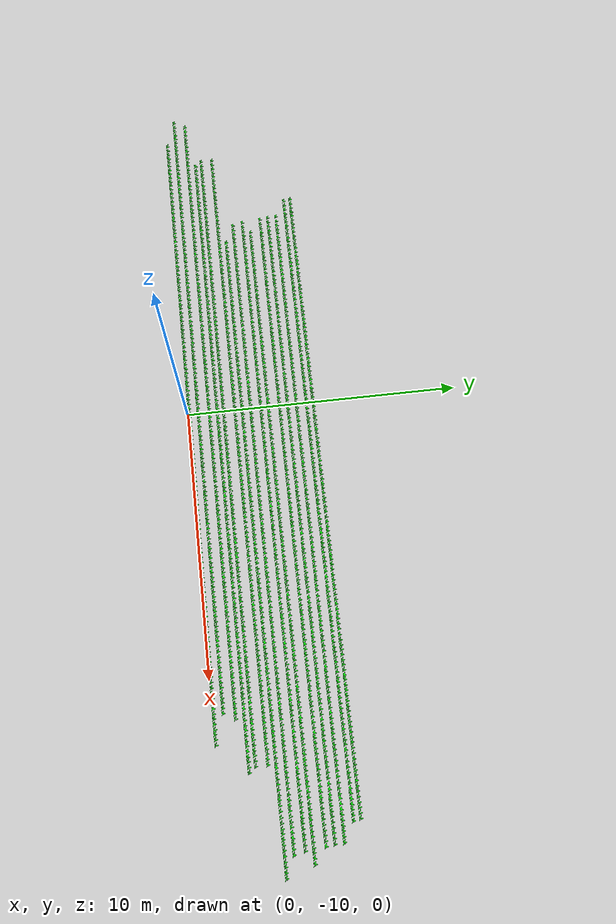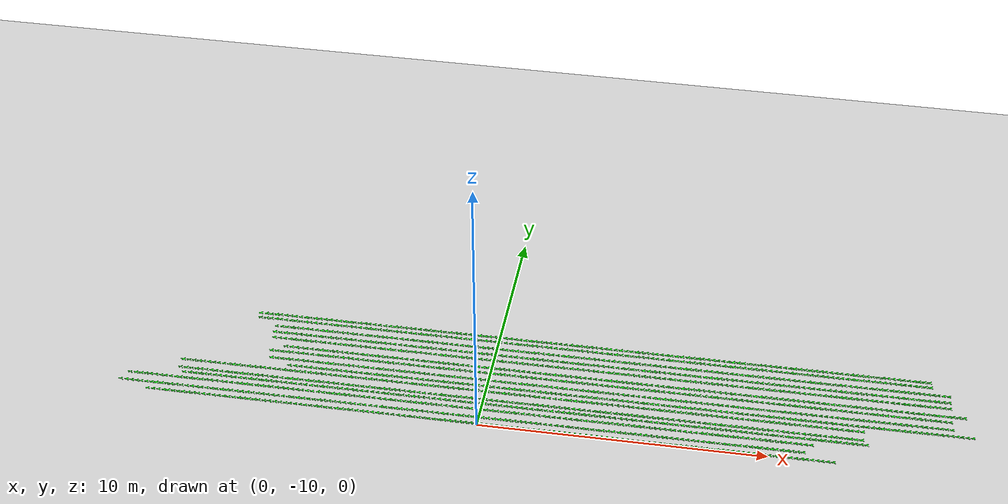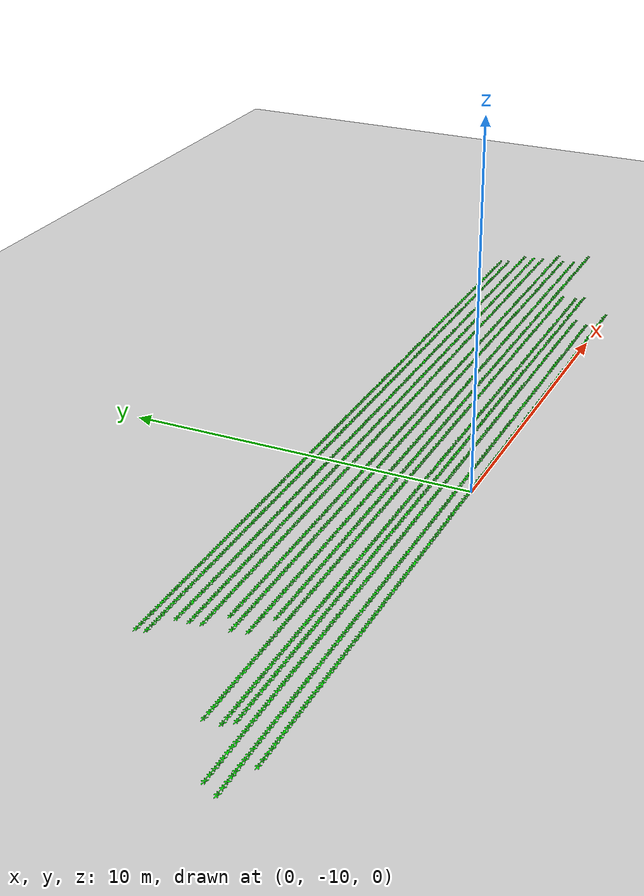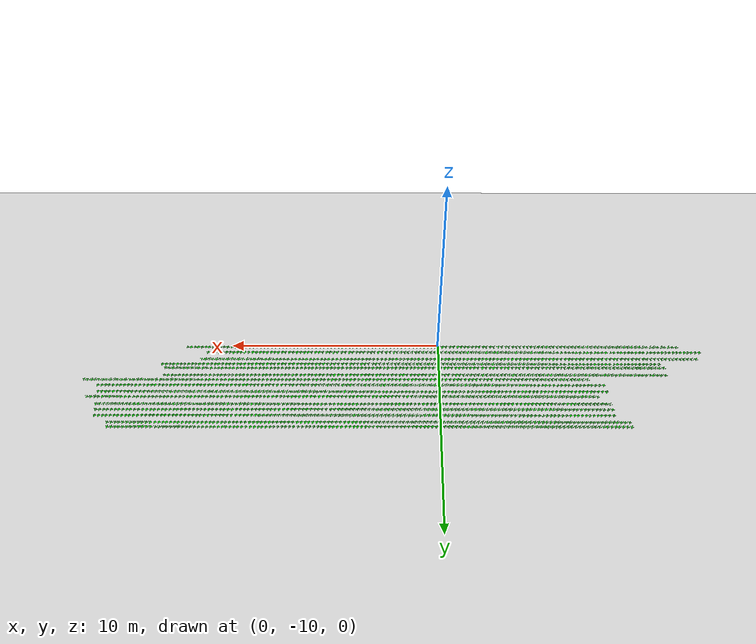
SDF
<sdf version="1.7">
 <world name="default">
  <model name="ground_plane">
   <static>1</static>
   <link name="link">
    <collision name="collision">
     <geometry><plane><normal>0 0 1</normal><size>100 100</size></plane></geometry>
     <surface>
      <contact><collide_bitmask>65535</collide_bitmask></contact>
      <friction><ode><mu>100</mu><mu2>50</mu2></ode></friction>
     </surface>
    </collision>
    <visual name="visual">
     <cast_shadows>0</cast_shadows>
     <geometry><plane><normal>0 0 1</normal><size>100 100</size></plane></geometry>
     <material>
      <script><uri>file://media/materials/scripts/gazebo.material</uri><name>Gazebo/Grey</name></script>
     </material>
    </visual>
   </link>
  </model>
  <model name="one_crop_row_clone_14">
   <link name="link_0">
    <inertial>
     <mass>9.98</mass>
     <inertia>
      <ixx>0.166667</ixx>
      <ixy>0</ixy>
      <ixz>0</ixz>
      <iyy>0.166667</iyy>
      <iyz>0</iyz>
      <izz>0.166667</izz>
     </inertia>
    </inertial>
    <visual name="visual">
     <geometry><mesh><uri>/home/devesh/one_crop_row.stl</uri><scale>1 1 1</scale></mesh></geometry>
     <material>
      <lighting>1</lighting>
      <script><uri>file://media/materials/scripts/gazebo.material</uri><name>Gazebo/Grey</name></script>
      <shader type="pixel"><normal_map>__default__</normal_map></shader>
      <ambient>0 1 0 0</ambient>
      <diffuse>0 1 0 0</diffuse>
      <specular>0 1 0 0</specular>
      <emissive>0 0 0 1</emissive>
     </material>
    </visual>
    <collision name="collision">
     <geometry><mesh><uri>/home/devesh/one_crop_row.stl</uri><scale>1 1 1</scale></mesh></geometry>
     <surface>
      <friction>
       <ode><mu>1</mu><mu2>1</mu2><fdir1>0 0 0</fdir1><slip1>0</slip1><slip2>0</slip2></ode>
       <torsional>
        <coefficient>1</coefficient>
        <patch_radius>0</patch_radius>
        <surface_radius>0</surface_radius>
        <use_patch_radius>1</use_patch_radius>
        <ode><slip>0</slip></ode>
       </torsional>
      </friction>
      <bounce><restitution_coefficient>0</restitution_coefficient><threshold>1e+06</threshold></bounce>
      <contact>
       <collide_without_contact>0</collide_without_contact>
       <collide_without_contact_bitmask>1</collide_without_contact_bitmask>
       <collide_bitmask>1</collide_bitmask>
       <ode>
        <soft_cfm>0</soft_cfm>
        <soft_erp>0.2</soft_erp>
        <kp>1e+13</kp>
        <kd>1</kd>
        <max_vel>0.01</max_vel>
        <min_depth>0</min_depth>
       </ode>
       <bullet>
        <split_impulse>1</split_impulse>
        <split_impulse_penetration_threshold>-0.01</split_impulse_penetration_threshold>
        <soft_cfm>0</soft_cfm>
        <soft_erp>0.2</soft_erp>
        <kp>1e+13</kp>
        <kd>1</kd>
       </bullet>
      </contact>
     </surface>
    </collision>
   </link>
   <static>0</static>
   <pose>1.97032 -5.938 0.01587 -0.022047 1e-06 0.000192</pose>
  </model>
  <model name="one_crop_row_clone_15">
   <link name="link_0">
    <inertial>
     <mass>9.98</mass>
     <inertia>
      <ixx>0.166667</ixx>
      <ixy>0</ixy>
      <ixz>0</ixz>
      <iyy>0.166667</iyy>
      <iyz>0</iyz>
      <izz>0.166667</izz>
     </inertia>
    </inertial>
    <visual name="visual">
     <geometry><mesh><uri>/home/devesh/one_crop_row.stl</uri><scale>1 1 1</scale></mesh></geometry>
     <material>
      <lighting>1</lighting>
      <script><uri>file://media/materials/scripts/gazebo.material</uri><name>Gazebo/Grey</name></script>
      <shader type="pixel"><normal_map>__default__</normal_map></shader>
      <ambient>0 1 0 0</ambient>
      <diffuse>0 1 0 0</diffuse>
      <specular>0 1 0 0</specular>
      <emissive>0 0 0 1</emissive>
     </material>
    </visual>
    <collision name="collision">
     <geometry><mesh><uri>/home/devesh/one_crop_row.stl</uri><scale>1 1 1</scale></mesh></geometry>
     <surface>
      <friction>
       <ode><mu>1</mu><mu2>1</mu2><fdir1>0 0 0</fdir1><slip1>0</slip1><slip2>0</slip2></ode>
       <torsional>
        <coefficient>1</coefficient>
        <patch_radius>0</patch_radius>
        <surface_radius>0</surface_radius>
        <use_patch_radius>1</use_patch_radius>
        <ode><slip>0</slip></ode>
       </torsional>
      </friction>
      <bounce><restitution_coefficient>0</restitution_coefficient><threshold>1e+06</threshold></bounce>
      <contact>
       <collide_without_contact>0</collide_without_contact>
       <collide_without_contact_bitmask>1</collide_without_contact_bitmask>
       <collide_bitmask>1</collide_bitmask>
       <ode>
        <soft_cfm>0</soft_cfm>
        <soft_erp>0.2</soft_erp>
        <kp>1e+13</kp>
        <kd>1</kd>
        <max_vel>0.01</max_vel>
        <min_depth>0</min_depth>
       </ode>
       <bullet>
        <split_impulse>1</split_impulse>
        <split_impulse_penetration_threshold>-0.01</split_impulse_penetration_threshold>
        <soft_cfm>0</soft_cfm>
        <soft_erp>0.2</soft_erp>
        <kp>1e+13</kp>
        <kd>1</kd>
       </bullet>
      </contact>
     </surface>
    </collision>
   </link>
   <static>0</static>
   <pose>1.25489 -5.31379 0.015865 -0.022043 8e-06 0.000192</pose>
  </model>
  <model name="one_crop_row_clone_16">
   <link name="link_0">
    <inertial>
     <mass>9.98</mass>
     <inertia>
      <ixx>0.166667</ixx>
      <ixy>0</ixy>
      <ixz>0</ixz>
      <iyy>0.166667</iyy>
      <iyz>0</iyz>
      <izz>0.166667</izz>
     </inertia>
    </inertial>
    <visual name="visual">
     <geometry><mesh><uri>/home/devesh/one_crop_row.stl</uri><scale>1 1 1</scale></mesh></geometry>
     <material>
      <lighting>1</lighting>
      <script><uri>file://media/materials/scripts/gazebo.material</uri><name>Gazebo/Grey</name></script>
      <shader type="pixel"><normal_map>__default__</normal_map></shader>
      <ambient>0 1 0 0</ambient>
      <diffuse>0 1 0 0</diffuse>
      <specular>0 1 0 0</specular>
      <emissive>0 0 0 1</emissive>
     </material>
    </visual>
    <collision name="collision">
     <geometry><mesh><uri>/home/devesh/one_crop_row.stl</uri><scale>1 1 1</scale></mesh></geometry>
     <surface>
      <friction>
       <ode><mu>1</mu><mu2>1</mu2><fdir1>0 0 0</fdir1><slip1>0</slip1><slip2>0</slip2></ode>
       <torsional>
        <coefficient>1</coefficient>
        <patch_radius>0</patch_radius>
        <surface_radius>0</surface_radius>
        <use_patch_radius>1</use_patch_radius>
        <ode><slip>0</slip></ode>
       </torsional>
      </friction>
      <bounce><restitution_coefficient>0</restitution_coefficient><threshold>1e+06</threshold></bounce>
      <contact>
       <collide_without_contact>0</collide_without_contact>
       <collide_without_contact_bitmask>1</collide_without_contact_bitmask>
       <collide_bitmask>1</collide_bitmask>
       <ode>
        <soft_cfm>0</soft_cfm>
        <soft_erp>0.2</soft_erp>
        <kp>1e+13</kp>
        <kd>1</kd>
        <max_vel>0.01</max_vel>
        <min_depth>0</min_depth>
       </ode>
       <bullet>
        <split_impulse>1</split_impulse>
        <split_impulse_penetration_threshold>-0.01</split_impulse_penetration_threshold>
        <soft_cfm>0</soft_cfm>
        <soft_erp>0.2</soft_erp>
        <kp>1e+13</kp>
        <kd>1</kd>
       </bullet>
      </contact>
     </surface>
    </collision>
   </link>
   <static>0</static>
   <pose>1.30937 -5.56247 0.015869 -0.021989 4e-06 0.000192</pose>
  </model>
  <model name="one_crop_row_clone_17">
   <link name="link_0">
    <inertial>
     <mass>9.98</mass>
     <inertia>
      <ixx>0.166667</ixx>
      <ixy>0</ixy>
      <ixz>0</ixz>
      <iyy>0.166667</iyy>
      <iyz>0</iyz>
      <izz>0.166667</izz>
     </inertia>
    </inertial>
    <visual name="visual">
     <geometry><mesh><uri>/home/devesh/one_crop_row.stl</uri><scale>1 1 1</scale></mesh></geometry>
     <material>
      <lighting>1</lighting>
      <script><uri>file://media/materials/scripts/gazebo.material</uri><name>Gazebo/Grey</name></script>
      <shader type="pixel"><normal_map>__default__</normal_map></shader>
      <ambient>0 1 0 0</ambient>
      <diffuse>0 1 0 0</diffuse>
      <specular>0 1 0 0</specular>
      <emissive>0 0 0 1</emissive>
     </material>
    </visual>
    <collision name="collision">
     <geometry><mesh><uri>/home/devesh/one_crop_row.stl</uri><scale>1 1 1</scale></mesh></geometry>
     <surface>
      <friction>
       <ode><mu>1</mu><mu2>1</mu2><fdir1>0 0 0</fdir1><slip1>0</slip1><slip2>0</slip2></ode>
       <torsional>
        <coefficient>1</coefficient>
        <patch_radius>0</patch_radius>
        <surface_radius>0</surface_radius>
        <use_patch_radius>1</use_patch_radius>
        <ode><slip>0</slip></ode>
       </torsional>
      </friction>
      <bounce><restitution_coefficient>0</restitution_coefficient><threshold>1e+06</threshold></bounce>
      <contact>
       <collide_without_contact>0</collide_without_contact>
       <collide_without_contact_bitmask>1</collide_without_contact_bitmask>
       <collide_bitmask>1</collide_bitmask>
       <ode>
        <soft_cfm>0</soft_cfm>
        <soft_erp>0.2</soft_erp>
        <kp>1e+13</kp>
        <kd>1</kd>
        <max_vel>0.01</max_vel>
        <min_depth>0</min_depth>
       </ode>
       <bullet>
        <split_impulse>1</split_impulse>
        <split_impulse_penetration_threshold>-0.01</split_impulse_penetration_threshold>
        <soft_cfm>0</soft_cfm>
        <soft_erp>0.2</soft_erp>
        <kp>1e+13</kp>
        <kd>1</kd>
       </bullet>
      </contact>
     </surface>
    </collision>
   </link>
   <static>0</static>
   <pose>2.56002 -6.99154 0.015872 -0.022099 -0 0.000192</pose>
  </model>
  <model name="one_crop_row_clone_18">
   <link name="link_0">
    <inertial>
     <mass>9.98</mass>
     <inertia>
      <ixx>0.166667</ixx>
      <ixy>0</ixy>
      <ixz>0</ixz>
      <iyy>0.166667</iyy>
      <iyz>0</iyz>
      <izz>0.166667</izz>
     </inertia>
    </inertial>
    <visual name="visual">
     <geometry><mesh><uri>/home/devesh/one_crop_row.stl</uri><scale>1 1 1</scale></mesh></geometry>
     <material>
      <lighting>1</lighting>
      <script><uri>file://media/materials/scripts/gazebo.material</uri><name>Gazebo/Grey</name></script>
      <shader type="pixel"><normal_map>__default__</normal_map></shader>
      <ambient>0 1 0 0</ambient>
      <diffuse>0 1 0 0</diffuse>
      <specular>0 1 0 0</specular>
      <emissive>0 0 0 1</emissive>
     </material>
    </visual>
    <collision name="collision">
     <geometry><mesh><uri>/home/devesh/one_crop_row.stl</uri><scale>1 1 1</scale></mesh></geometry>
     <surface>
      <friction>
       <ode><mu>1</mu><mu2>1</mu2><fdir1>0 0 0</fdir1><slip1>0</slip1><slip2>0</slip2></ode>
       <torsional>
        <coefficient>1</coefficient>
        <patch_radius>0</patch_radius>
        <surface_radius>0</surface_radius>
        <use_patch_radius>1</use_patch_radius>
        <ode><slip>0</slip></ode>
       </torsional>
      </friction>
      <bounce><restitution_coefficient>0</restitution_coefficient><threshold>1e+06</threshold></bounce>
      <contact>
       <collide_without_contact>0</collide_without_contact>
       <collide_without_contact_bitmask>1</collide_without_contact_bitmask>
       <collide_bitmask>1</collide_bitmask>
       <ode>
        <soft_cfm>0</soft_cfm>
        <soft_erp>0.2</soft_erp>
        <kp>1e+13</kp>
        <kd>1</kd>
        <max_vel>0.01</max_vel>
        <min_depth>0</min_depth>
       </ode>
       <bullet>
        <split_impulse>1</split_impulse>
        <split_impulse_penetration_threshold>-0.01</split_impulse_penetration_threshold>
        <soft_cfm>0</soft_cfm>
        <soft_erp>0.2</soft_erp>
        <kp>1e+13</kp>
        <kd>1</kd>
       </bullet>
      </contact>
     </surface>
    </collision>
   </link>
   <static>0</static>
   <pose>1.98734 -6.26593 0.015872 -0.022032 -0 0.000192</pose>
  </model>
  <model name="one_crop_row_clone_19">
   <link name="link_0">
    <inertial>
     <mass>9.98</mass>
     <inertia>
      <ixx>0.166667</ixx>
      <ixy>0</ixy>
      <ixz>0</ixz>
      <iyy>0.166667</iyy>
      <iyz>0</iyz>
      <izz>0.166667</izz>
     </inertia>
    </inertial>
    <visual name="visual">
     <geometry><mesh><uri>/home/devesh/one_crop_row.stl</uri><scale>1 1 1</scale></mesh></geometry>
     <material>
      <lighting>1</lighting>
      <script><uri>file://media/materials/scripts/gazebo.material</uri><name>Gazebo/Grey</name></script>
      <shader type="pixel"><normal_map>__default__</normal_map></shader>
      <ambient>0 1 0 0</ambient>
      <diffuse>0 1 0 0</diffuse>
      <specular>0 1 0 0</specular>
      <emissive>0 0 0 1</emissive>
     </material>
    </visual>
    <collision name="collision">
     <geometry><mesh><uri>/home/devesh/one_crop_row.stl</uri><scale>1 1 1</scale></mesh></geometry>
     <surface>
      <friction>
       <ode><mu>1</mu><mu2>1</mu2><fdir1>0 0 0</fdir1><slip1>0</slip1><slip2>0</slip2></ode>
       <torsional>
        <coefficient>1</coefficient>
        <patch_radius>0</patch_radius>
        <surface_radius>0</surface_radius>
        <use_patch_radius>1</use_patch_radius>
        <ode><slip>0</slip></ode>
       </torsional>
      </friction>
      <bounce><restitution_coefficient>0</restitution_coefficient><threshold>1e+06</threshold></bounce>
      <contact>
       <collide_without_contact>0</collide_without_contact>
       <collide_without_contact_bitmask>1</collide_without_contact_bitmask>
       <collide_bitmask>1</collide_bitmask>
       <ode>
        <soft_cfm>0</soft_cfm>
        <soft_erp>0.2</soft_erp>
        <kp>1e+13</kp>
        <kd>1</kd>
        <max_vel>0.01</max_vel>
        <min_depth>0</min_depth>
       </ode>
       <bullet>
        <split_impulse>1</split_impulse>
        <split_impulse_penetration_threshold>-0.01</split_impulse_penetration_threshold>
        <soft_cfm>0</soft_cfm>
        <soft_erp>0.2</soft_erp>
        <kp>1e+13</kp>
        <kd>1</kd>
       </bullet>
      </contact>
     </surface>
    </collision>
   </link>
   <static>0</static>
   <pose>2.03769 -6.57263 0.015865 -0.022081 2e-06 0.000192</pose>
  </model>
  <model name="one_crop_row_clone_20">
   <link name="link_0">
    <inertial>
     <mass>9.98</mass>
     <inertia>
      <ixx>0.166667</ixx>
      <ixy>0</ixy>
      <ixz>0</ixz>
      <iyy>0.166667</iyy>
      <iyz>0</iyz>
      <izz>0.166667</izz>
     </inertia>
    </inertial>
    <visual name="visual">
     <geometry><mesh><uri>/home/devesh/one_crop_row.stl</uri><scale>1 1 1</scale></mesh></geometry>
     <material>
      <lighting>1</lighting>
      <script><uri>file://media/materials/scripts/gazebo.material</uri><name>Gazebo/Grey</name></script>
      <shader type="pixel"><normal_map>__default__</normal_map></shader>
      <ambient>0 1 0 0</ambient>
      <diffuse>0 1 0 0</diffuse>
      <specular>0 1 0 0</specular>
      <emissive>0 0 0 1</emissive>
     </material>
    </visual>
    <collision name="collision">
     <geometry><mesh><uri>/home/devesh/one_crop_row.stl</uri><scale>1 1 1</scale></mesh></geometry>
     <surface>
      <friction>
       <ode><mu>1</mu><mu2>1</mu2><fdir1>0 0 0</fdir1><slip1>0</slip1><slip2>0</slip2></ode>
       <torsional>
        <coefficient>1</coefficient>
        <patch_radius>0</patch_radius>
        <surface_radius>0</surface_radius>
        <use_patch_radius>1</use_patch_radius>
        <ode><slip>0</slip></ode>
       </torsional>
      </friction>
      <bounce><restitution_coefficient>0</restitution_coefficient><threshold>1e+06</threshold></bounce>
      <contact>
       <collide_without_contact>0</collide_without_contact>
       <collide_without_contact_bitmask>1</collide_without_contact_bitmask>
       <collide_bitmask>1</collide_bitmask>
       <ode>
        <soft_cfm>0</soft_cfm>
        <soft_erp>0.2</soft_erp>
        <kp>1e+13</kp>
        <kd>1</kd>
        <max_vel>0.01</max_vel>
        <min_depth>0</min_depth>
       </ode>
       <bullet>
        <split_impulse>1</split_impulse>
        <split_impulse_penetration_threshold>-0.01</split_impulse_penetration_threshold>
        <soft_cfm>0</soft_cfm>
        <soft_erp>0.2</soft_erp>
        <kp>1e+13</kp>
        <kd>1</kd>
       </bullet>
      </contact>
     </surface>
    </collision>
   </link>
   <static>0</static>
   <pose>2.91084 -7.97507 0.015865 -0.021939 -1e-06 0.000192</pose>
  </model>
  <model name="one_crop_row_clone_21">
   <link name="link_0">
    <inertial>
     <mass>9.98</mass>
     <inertia>
      <ixx>0.166667</ixx>
      <ixy>0</ixy>
      <ixz>0</ixz>
      <iyy>0.166667</iyy>
      <iyz>0</iyz>
      <izz>0.166667</izz>
     </inertia>
    </inertial>
    <visual name="visual">
     <geometry><mesh><uri>/home/devesh/one_crop_row.stl</uri><scale>1 1 1</scale></mesh></geometry>
     <material>
      <lighting>1</lighting>
      <script><uri>file://media/materials/scripts/gazebo.material</uri><name>Gazebo/Grey</name></script>
      <shader type="pixel"><normal_map>__default__</normal_map></shader>
      <ambient>0 1 0 0</ambient>
      <diffuse>0 1 0 0</diffuse>
      <specular>0 1 0 0</specular>
      <emissive>0 0 0 1</emissive>
     </material>
    </visual>
    <collision name="collision">
     <geometry><mesh><uri>/home/devesh/one_crop_row.stl</uri><scale>1 1 1</scale></mesh></geometry>
     <surface>
      <friction>
       <ode><mu>1</mu><mu2>1</mu2><fdir1>0 0 0</fdir1><slip1>0</slip1><slip2>0</slip2></ode>
       <torsional>
        <coefficient>1</coefficient>
        <patch_radius>0</patch_radius>
        <surface_radius>0</surface_radius>
        <use_patch_radius>1</use_patch_radius>
        <ode><slip>0</slip></ode>
       </torsional>
      </friction>
      <bounce><restitution_coefficient>0</restitution_coefficient><threshold>1e+06</threshold></bounce>
      <contact>
       <collide_without_contact>0</collide_without_contact>
       <collide_without_contact_bitmask>1</collide_without_contact_bitmask>
       <collide_bitmask>1</collide_bitmask>
       <ode>
        <soft_cfm>0</soft_cfm>
        <soft_erp>0.2</soft_erp>
        <kp>1e+13</kp>
        <kd>1</kd>
        <max_vel>0.01</max_vel>
        <min_depth>0</min_depth>
       </ode>
       <bullet>
        <split_impulse>1</split_impulse>
        <split_impulse_penetration_threshold>-0.01</split_impulse_penetration_threshold>
        <soft_cfm>0</soft_cfm>
        <soft_erp>0.2</soft_erp>
        <kp>1e+13</kp>
        <kd>1</kd>
       </bullet>
      </contact>
     </surface>
    </collision>
   </link>
   <static>0</static>
   <pose>2.09968 -7.27457 0.015872 -0.0221 -4e-06 0.000192</pose>
  </model>
  <model name="one_crop_row_clone_22">
   <link name="link_0">
    <inertial>
     <mass>9.98</mass>
     <inertia>
      <ixx>0.166667</ixx>
      <ixy>0</ixy>
      <ixz>0</ixz>
      <iyy>0.166667</iyy>
      <iyz>0</iyz>
      <izz>0.166667</izz>
     </inertia>
    </inertial>
    <visual name="visual">
     <geometry><mesh><uri>/home/devesh/one_crop_row.stl</uri><scale>1 1 1</scale></mesh></geometry>
     <material>
      <lighting>1</lighting>
      <script><uri>file://media/materials/scripts/gazebo.material</uri><name>Gazebo/Grey</name></script>
      <shader type="pixel"><normal_map>__default__</normal_map></shader>
      <ambient>0 1 0 0</ambient>
      <diffuse>0 1 0 0</diffuse>
      <specular>0 1 0 0</specular>
      <emissive>0 0 0 1</emissive>
     </material>
    </visual>
    <collision name="collision">
     <geometry><mesh><uri>/home/devesh/one_crop_row.stl</uri><scale>1 1 1</scale></mesh></geometry>
     <surface>
      <friction>
       <ode><mu>1</mu><mu2>1</mu2><fdir1>0 0 0</fdir1><slip1>0</slip1><slip2>0</slip2></ode>
       <torsional>
        <coefficient>1</coefficient>
        <patch_radius>0</patch_radius>
        <surface_radius>0</surface_radius>
        <use_patch_radius>1</use_patch_radius>
        <ode><slip>0</slip></ode>
       </torsional>
      </friction>
      <bounce><restitution_coefficient>0</restitution_coefficient><threshold>1e+06</threshold></bounce>
      <contact>
       <collide_without_contact>0</collide_without_contact>
       <collide_without_contact_bitmask>1</collide_without_contact_bitmask>
       <collide_bitmask>1</collide_bitmask>
       <ode>
        <soft_cfm>0</soft_cfm>
        <soft_erp>0.2</soft_erp>
        <kp>1e+13</kp>
        <kd>1</kd>
        <max_vel>0.01</max_vel>
        <min_depth>0</min_depth>
       </ode>
       <bullet>
        <split_impulse>1</split_impulse>
        <split_impulse_penetration_threshold>-0.01</split_impulse_penetration_threshold>
        <soft_cfm>0</soft_cfm>
        <soft_erp>0.2</soft_erp>
        <kp>1e+13</kp>
        <kd>1</kd>
       </bullet>
      </contact>
     </surface>
    </collision>
   </link>
   <static>0</static>
   <pose>2.18856 -7.65548 0.01587 -0.021946 1e-06 0.000192</pose>
  </model>
  <model name="one_crop_row_clone_23">
   <link name="link_0">
    <inertial>
     <mass>9.98</mass>
     <inertia>
      <ixx>0.166667</ixx>
      <ixy>0</ixy>
      <ixz>0</ixz>
      <iyy>0.166667</iyy>
      <iyz>0</iyz>
      <izz>0.166667</izz>
     </inertia>
    </inertial>
    <visual name="visual">
     <geometry><mesh><uri>/home/devesh/one_crop_row.stl</uri><scale>1 1 1</scale></mesh></geometry>
     <material>
      <lighting>1</lighting>
      <script><uri>file://media/materials/scripts/gazebo.material</uri><name>Gazebo/Grey</name></script>
      <shader type="pixel"><normal_map>__default__</normal_map></shader>
      <ambient>0 1 0 0</ambient>
      <diffuse>0 1 0 0</diffuse>
      <specular>0 1 0 0</specular>
      <emissive>0 0 0 1</emissive>
     </material>
    </visual>
    <collision name="collision">
     <geometry><mesh><uri>/home/devesh/one_crop_row.stl</uri><scale>1 1 1</scale></mesh></geometry>
     <surface>
      <friction>
       <ode><mu>1</mu><mu2>1</mu2><fdir1>0 0 0</fdir1><slip1>0</slip1><slip2>0</slip2></ode>
       <torsional>
        <coefficient>1</coefficient>
        <patch_radius>0</patch_radius>
        <surface_radius>0</surface_radius>
        <use_patch_radius>1</use_patch_radius>
        <ode><slip>0</slip></ode>
       </torsional>
      </friction>
      <bounce><restitution_coefficient>0</restitution_coefficient><threshold>1e+06</threshold></bounce>
      <contact>
       <collide_without_contact>0</collide_without_contact>
       <collide_without_contact_bitmask>1</collide_without_contact_bitmask>
       <collide_bitmask>1</collide_bitmask>
       <ode>
        <soft_cfm>0</soft_cfm>
        <soft_erp>0.2</soft_erp>
        <kp>1e+13</kp>
        <kd>1</kd>
        <max_vel>0.01</max_vel>
        <min_depth>0</min_depth>
       </ode>
       <bullet>
        <split_impulse>1</split_impulse>
        <split_impulse_penetration_threshold>-0.01</split_impulse_penetration_threshold>
        <soft_cfm>0</soft_cfm>
        <soft_erp>0.2</soft_erp>
        <kp>1e+13</kp>
        <kd>1</kd>
       </bullet>
      </contact>
     </surface>
    </collision>
   </link>
   <static>0</static>
   <pose>-0.641962 -8.90337 0.015872 -0.022094 -4e-06 0.000192</pose>
  </model>
  <model name="one_crop_row_clone_24">
   <link name="link_0">
    <inertial>
     <mass>9.98</mass>
     <inertia>
      <ixx>0.166667</ixx>
      <ixy>0</ixy>
      <ixz>0</ixz>
      <iyy>0.166667</iyy>
      <iyz>0</iyz>
      <izz>0.166667</izz>
     </inertia>
    </inertial>
    <visual name="visual">
     <geometry><mesh><uri>/home/devesh/one_crop_row.stl</uri><scale>1 1 1</scale></mesh></geometry>
     <material>
      <lighting>1</lighting>
      <script><uri>file://media/materials/scripts/gazebo.material</uri><name>Gazebo/Grey</name></script>
      <shader type="pixel"><normal_map>__default__</normal_map></shader>
      <ambient>0 1 0 0</ambient>
      <diffuse>0 1 0 0</diffuse>
      <specular>0 1 0 0</specular>
      <emissive>0 0 0 1</emissive>
     </material>
    </visual>
    <collision name="collision">
     <geometry><mesh><uri>/home/devesh/one_crop_row.stl</uri><scale>1 1 1</scale></mesh></geometry>
     <surface>
      <friction>
       <ode><mu>1</mu><mu2>1</mu2><fdir1>0 0 0</fdir1><slip1>0</slip1><slip2>0</slip2></ode>
       <torsional>
        <coefficient>1</coefficient>
        <patch_radius>0</patch_radius>
        <surface_radius>0</surface_radius>
        <use_patch_radius>1</use_patch_radius>
        <ode><slip>0</slip></ode>
       </torsional>
      </friction>
      <bounce><restitution_coefficient>0</restitution_coefficient><threshold>1e+06</threshold></bounce>
      <contact>
       <collide_without_contact>0</collide_without_contact>
       <collide_without_contact_bitmask>1</collide_without_contact_bitmask>
       <collide_bitmask>1</collide_bitmask>
       <ode>
        <soft_cfm>0</soft_cfm>
        <soft_erp>0.2</soft_erp>
        <kp>1e+13</kp>
        <kd>1</kd>
        <max_vel>0.01</max_vel>
        <min_depth>0</min_depth>
       </ode>
       <bullet>
        <split_impulse>1</split_impulse>
        <split_impulse_penetration_threshold>-0.01</split_impulse_penetration_threshold>
        <soft_cfm>0</soft_cfm>
        <soft_erp>0.2</soft_erp>
        <kp>1e+13</kp>
        <kd>1</kd>
       </bullet>
      </contact>
     </surface>
    </collision>
   </link>
   <static>0</static>
   <pose>-0.840184 -8.24691 0.015864 -0.022017 2e-06 0.000192</pose>
  </model>
  <model name="one_crop_row_clone_25">
   <link name="link_0">
    <inertial>
     <mass>9.98</mass>
     <inertia>
      <ixx>0.166667</ixx>
      <ixy>0</ixy>
      <ixz>0</ixz>
      <iyy>0.166667</iyy>
      <iyz>0</iyz>
      <izz>0.166667</izz>
     </inertia>
    </inertial>
    <visual name="visual">
     <geometry><mesh><uri>/home/devesh/one_crop_row.stl</uri><scale>1 1 1</scale></mesh></geometry>
     <material>
      <lighting>1</lighting>
      <script><uri>file://media/materials/scripts/gazebo.material</uri><name>Gazebo/Grey</name></script>
      <shader type="pixel"><normal_map>__default__</normal_map></shader>
      <ambient>0 1 0 0</ambient>
      <diffuse>0 1 0 0</diffuse>
      <specular>0 1 0 0</specular>
      <emissive>0 0 0 1</emissive>
     </material>
    </visual>
    <collision name="collision">
     <geometry><mesh><uri>/home/devesh/one_crop_row.stl</uri><scale>1 1 1</scale></mesh></geometry>
     <surface>
      <friction>
       <ode><mu>1</mu><mu2>1</mu2><fdir1>0 0 0</fdir1><slip1>0</slip1><slip2>0</slip2></ode>
       <torsional>
        <coefficient>1</coefficient>
        <patch_radius>0</patch_radius>
        <surface_radius>0</surface_radius>
        <use_patch_radius>1</use_patch_radius>
        <ode><slip>0</slip></ode>
       </torsional>
      </friction>
      <bounce><restitution_coefficient>0</restitution_coefficient><threshold>1e+06</threshold></bounce>
      <contact>
       <collide_without_contact>0</collide_without_contact>
       <collide_without_contact_bitmask>1</collide_without_contact_bitmask>
       <collide_bitmask>1</collide_bitmask>
       <ode>
        <soft_cfm>0</soft_cfm>
        <soft_erp>0.2</soft_erp>
        <kp>1e+13</kp>
        <kd>1</kd>
        <max_vel>0.01</max_vel>
        <min_depth>0</min_depth>
       </ode>
       <bullet>
        <split_impulse>1</split_impulse>
        <split_impulse_penetration_threshold>-0.01</split_impulse_penetration_threshold>
        <soft_cfm>0</soft_cfm>
        <soft_erp>0.2</soft_erp>
        <kp>1e+13</kp>
        <kd>1</kd>
       </bullet>
      </contact>
     </surface>
    </collision>
   </link>
   <static>0</static>
   <pose>-0.832335 -8.66978 0.015872 -0.022099 -0 0.000192</pose>
  </model>
  <model name="one_crop_row_clone_26">
   <link name="link_0">
    <inertial>
     <mass>9.98</mass>
     <inertia>
      <ixx>0.166667</ixx>
      <ixy>0</ixy>
      <ixz>0</ixz>
      <iyy>0.166667</iyy>
      <iyz>0</iyz>
      <izz>0.166667</izz>
     </inertia>
    </inertial>
    <visual name="visual">
     <geometry><mesh><uri>/home/devesh/one_crop_row.stl</uri><scale>1 1 1</scale></mesh></geometry>
     <material>
      <lighting>1</lighting>
      <script><uri>file://media/materials/scripts/gazebo.material</uri><name>Gazebo/Grey</name></script>
      <shader type="pixel"><normal_map>__default__</normal_map></shader>
      <ambient>0 1 0 0</ambient>
      <diffuse>0 1 0 0</diffuse>
      <specular>0 1 0 0</specular>
      <emissive>0 0 0 1</emissive>
     </material>
    </visual>
    <collision name="collision">
     <geometry><mesh><uri>/home/devesh/one_crop_row.stl</uri><scale>1 1 1</scale></mesh></geometry>
     <surface>
      <friction>
       <ode><mu>1</mu><mu2>1</mu2><fdir1>0 0 0</fdir1><slip1>0</slip1><slip2>0</slip2></ode>
       <torsional>
        <coefficient>1</coefficient>
        <patch_radius>0</patch_radius>
        <surface_radius>0</surface_radius>
        <use_patch_radius>1</use_patch_radius>
        <ode><slip>0</slip></ode>
       </torsional>
      </friction>
      <bounce><restitution_coefficient>0</restitution_coefficient><threshold>1e+06</threshold></bounce>
      <contact>
       <collide_without_contact>0</collide_without_contact>
       <collide_without_contact_bitmask>1</collide_without_contact_bitmask>
       <collide_bitmask>1</collide_bitmask>
       <ode>
        <soft_cfm>0</soft_cfm>
        <soft_erp>0.2</soft_erp>
        <kp>1e+13</kp>
        <kd>1</kd>
        <max_vel>0.01</max_vel>
        <min_depth>0</min_depth>
       </ode>
       <bullet>
        <split_impulse>1</split_impulse>
        <split_impulse_penetration_threshold>-0.01</split_impulse_penetration_threshold>
        <soft_cfm>0</soft_cfm>
        <soft_erp>0.2</soft_erp>
        <kp>1e+13</kp>
        <kd>1</kd>
       </bullet>
      </contact>
     </surface>
    </collision>
   </link>
   <static>0</static>
   <pose>-1.68835 -9.94976 0.015871 -0.022079 -3e-06 0.000192</pose>
  </model>
  <model name="one_crop_row_clone_27">
   <link name="link_0">
    <inertial>
     <mass>9.98</mass>
     <inertia>
      <ixx>0.166667</ixx>
      <ixy>0</ixy>
      <ixz>0</ixz>
      <iyy>0.166667</iyy>
      <iyz>0</iyz>
      <izz>0.166667</izz>
     </inertia>
    </inertial>
    <visual name="visual">
     <geometry><mesh><uri>/home/devesh/one_crop_row.stl</uri><scale>1 1 1</scale></mesh></geometry>
     <material>
      <lighting>1</lighting>
      <script><uri>file://media/materials/scripts/gazebo.material</uri><name>Gazebo/Grey</name></script>
      <shader type="pixel"><normal_map>__default__</normal_map></shader>
      <ambient>0 1 0 0</ambient>
      <diffuse>0 1 0 0</diffuse>
      <specular>0 1 0 0</specular>
      <emissive>0 0 0 1</emissive>
     </material>
    </visual>
    <collision name="collision">
     <geometry><mesh><uri>/home/devesh/one_crop_row.stl</uri><scale>1 1 1</scale></mesh></geometry>
     <surface>
      <friction>
       <ode><mu>1</mu><mu2>1</mu2><fdir1>0 0 0</fdir1><slip1>0</slip1><slip2>0</slip2></ode>
       <torsional>
        <coefficient>1</coefficient>
        <patch_radius>0</patch_radius>
        <surface_radius>0</surface_radius>
        <use_patch_radius>1</use_patch_radius>
        <ode><slip>0</slip></ode>
       </torsional>
      </friction>
      <bounce><restitution_coefficient>0</restitution_coefficient><threshold>1e+06</threshold></bounce>
      <contact>
       <collide_without_contact>0</collide_without_contact>
       <collide_without_contact_bitmask>1</collide_without_contact_bitmask>
       <collide_bitmask>1</collide_bitmask>
       <ode>
        <soft_cfm>0</soft_cfm>
        <soft_erp>0.2</soft_erp>
        <kp>1e+13</kp>
        <kd>1</kd>
        <max_vel>0.01</max_vel>
        <min_depth>0</min_depth>
       </ode>
       <bullet>
        <split_impulse>1</split_impulse>
        <split_impulse_penetration_threshold>-0.01</split_impulse_penetration_threshold>
        <soft_cfm>0</soft_cfm>
        <soft_erp>0.2</soft_erp>
        <kp>1e+13</kp>
        <kd>1</kd>
       </bullet>
      </contact>
     </surface>
    </collision>
   </link>
   <static>0</static>
   <pose>-2.50557 -9.20415 0.015867 -0.021871 2e-06 0.000192</pose>
  </model>
  <model name="one_crop_row_clone_28">
   <link name="link_0">
    <inertial>
     <mass>9.98</mass>
     <inertia>
      <ixx>0.166667</ixx>
      <ixy>0</ixy>
      <ixz>0</ixz>
      <iyy>0.166667</iyy>
      <iyz>0</iyz>
      <izz>0.166667</izz>
     </inertia>
    </inertial>
    <visual name="visual">
     <geometry><mesh><uri>/home/devesh/one_crop_row.stl</uri><scale>1 1 1</scale></mesh></geometry>
     <material>
      <lighting>1</lighting>
      <script><uri>file://media/materials/scripts/gazebo.material</uri><name>Gazebo/Grey</name></script>
      <shader type="pixel"><normal_map>__default__</normal_map></shader>
      <ambient>0 1 0 0</ambient>
      <diffuse>0 1 0 0</diffuse>
      <specular>0 1 0 0</specular>
      <emissive>0 0 0 1</emissive>
     </material>
    </visual>
    <collision name="collision">
     <geometry><mesh><uri>/home/devesh/one_crop_row.stl</uri><scale>1 1 1</scale></mesh></geometry>
     <surface>
      <friction>
       <ode><mu>1</mu><mu2>1</mu2><fdir1>0 0 0</fdir1><slip1>0</slip1><slip2>0</slip2></ode>
       <torsional>
        <coefficient>1</coefficient>
        <patch_radius>0</patch_radius>
        <surface_radius>0</surface_radius>
        <use_patch_radius>1</use_patch_radius>
        <ode><slip>0</slip></ode>
       </torsional>
      </friction>
      <bounce><restitution_coefficient>0</restitution_coefficient><threshold>1e+06</threshold></bounce>
      <contact>
       <collide_without_contact>0</collide_without_contact>
       <collide_without_contact_bitmask>1</collide_without_contact_bitmask>
       <collide_bitmask>1</collide_bitmask>
       <ode>
        <soft_cfm>0</soft_cfm>
        <soft_erp>0.2</soft_erp>
        <kp>1e+13</kp>
        <kd>1</kd>
        <max_vel>0.01</max_vel>
        <min_depth>0</min_depth>
       </ode>
       <bullet>
        <split_impulse>1</split_impulse>
        <split_impulse_penetration_threshold>-0.01</split_impulse_penetration_threshold>
        <soft_cfm>0</soft_cfm>
        <soft_erp>0.2</soft_erp>
        <kp>1e+13</kp>
        <kd>1</kd>
       </bullet>
      </contact>
     </surface>
    </collision>
   </link>
   <static>0</static>
   <pose>-2.73796 -9.61644 0.015872 -0.022081 -0 0.000192</pose>
  </model>
 </world>
</sdf>
